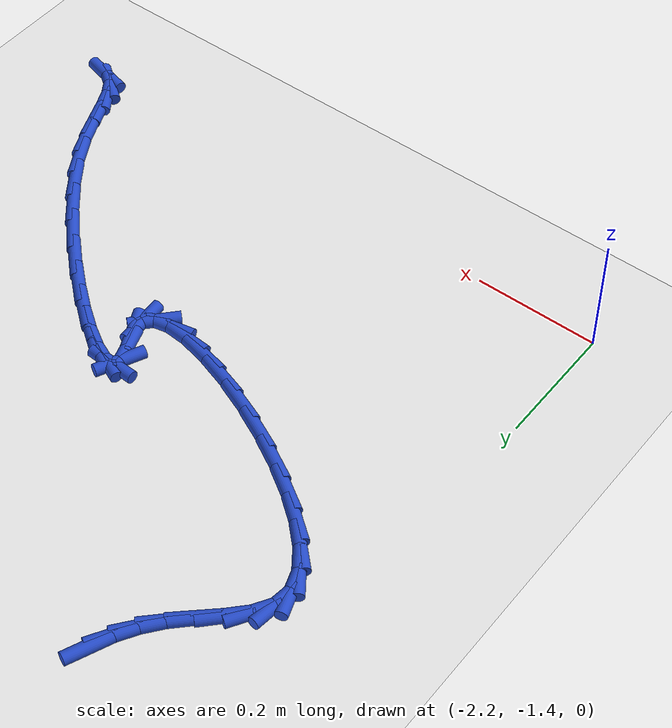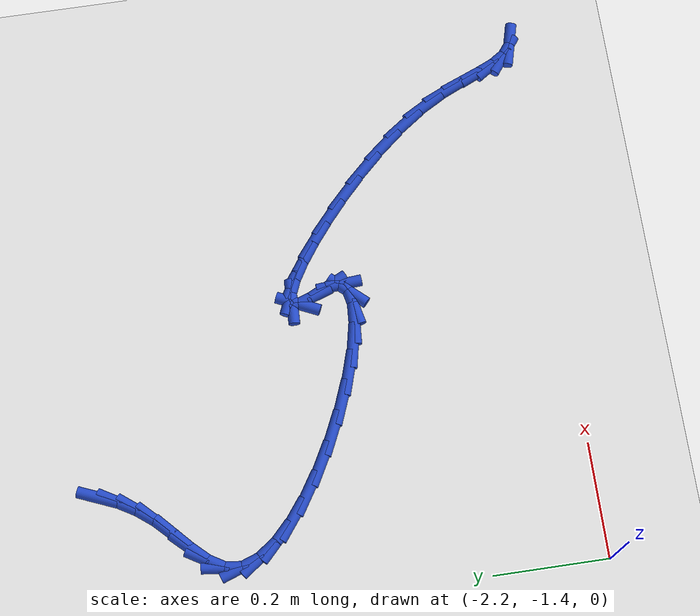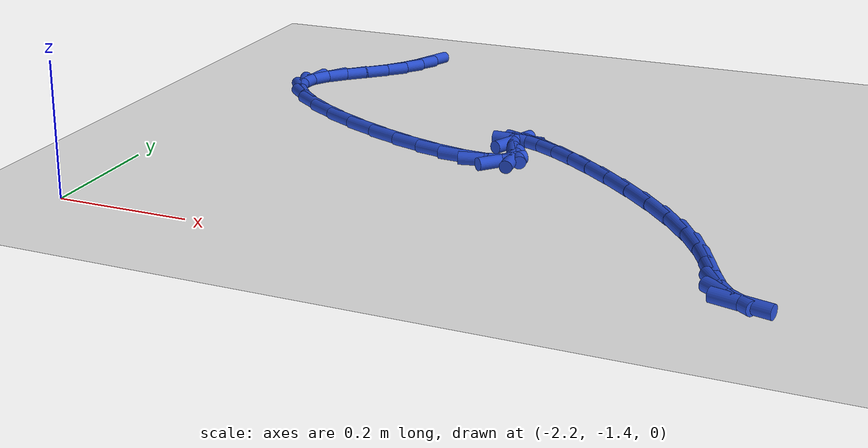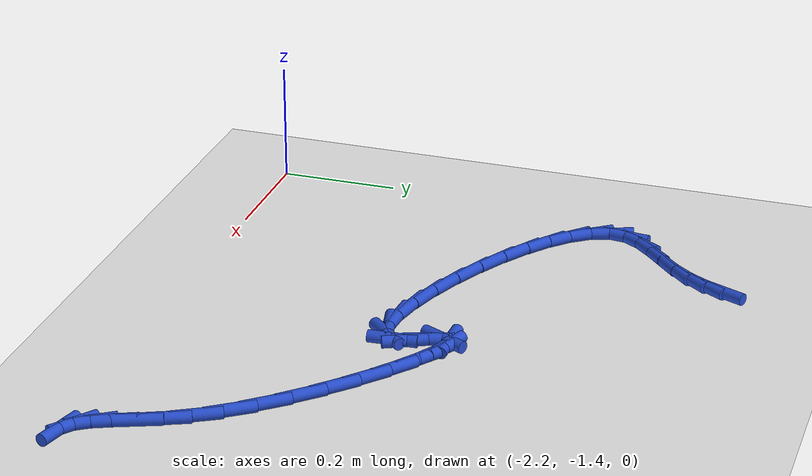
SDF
<sdf version="1.6">
 <world name="default">
  <model name="ground_plane">
   <static>1</static>
   <link name="link">
    <collision name="collision">
     <geometry><plane><normal>0 0 1</normal><size>100 100</size></plane></geometry>
     <surface><friction><ode><mu>100</mu><mu2>50</mu2></ode></friction></surface>
    </collision>
    <visual name="visual">
     <cast_shadows>0</cast_shadows>
     <geometry><plane><normal>0 0 1</normal><size>100 100</size></plane></geometry>
     <material>
      <script><uri>file://media/materials/scripts/gazebo.material</uri><name>Gazebo/WhiteGlow</name></script>
     </material>
    </visual>
   </link>
  </model>
  <model name="line">
   <link name="link_150">
    <pose>-1.9731847995964362 -0.5659096130140324 0.01 0 1.57 1.1713240663926172</pose>
    <collision name="collision">
     <geometry><cylinder><radius>0.01</radius><length>0.08</length></cylinder></geometry>
    </collision>
    <visual name="visual">
     <material>
      <script><name>Gazebo/Blue</name><uri>file://media/materials/scripts/gazebo.material</uri></script>
     </material>
     <geometry><cylinder><radius>0.01</radius><length>0.08</length></cylinder></geometry>
    </visual>
   </link>
   <link name="link_151">
    <pose>-1.986045454685041 -0.5963727345712457 0.01 0 1.57 1.0375126222861626</pose>
    <collision name="collision">
     <geometry><cylinder><radius>0.01</radius><length>0.08</length></cylinder></geometry>
    </collision>
    <visual name="visual">
     <material>
      <script><name>Gazebo/Blue</name><uri>file://media/materials/scripts/gazebo.material</uri></script>
     </material>
     <geometry><cylinder><radius>0.01</radius><length>0.08</length></cylinder></geometry>
    </visual>
   </link>
   <link name="link_152">
    <pose>-2.0033181121033143 -0.6256317361886606 0.01 0 1.57 0.9073966812657125</pose>
    <collision name="collision">
     <geometry><cylinder><radius>0.01</radius><length>0.08</length></cylinder></geometry>
    </collision>
    <visual name="visual">
     <material>
      <script><name>Gazebo/Blue</name><uri>file://media/materials/scripts/gazebo.material</uri></script>
     </material>
     <geometry><cylinder><radius>0.01</radius><length>0.08</length></cylinder></geometry>
    </visual>
   </link>
   <link name="link_153">
    <pose>-2.0251950450676124 -0.6536228624186747 0.01 0 1.57 0.7913356417255717</pose>
    <collision name="collision">
     <geometry><cylinder><radius>0.01</radius><length>0.08</length></cylinder></geometry>
    </collision>
    <visual name="visual">
     <material>
      <script><name>Gazebo/Blue</name><uri>file://media/materials/scripts/gazebo.material</uri></script>
     </material>
     <geometry><cylinder><radius>0.01</radius><length>0.08</length></cylinder></geometry>
    </visual>
   </link>
   <link name="link_154">
    <pose>-2.0515903526741086 -0.6803334890642785 0.01 0 1.57 0.7499831603994702</pose>
    <collision name="collision">
     <geometry><cylinder><radius>0.01</radius><length>0.08</length></cylinder></geometry>
    </collision>
    <visual name="visual">
     <material>
      <script><name>Gazebo/Blue</name><uri>file://media/materials/scripts/gazebo.material</uri></script>
     </material>
     <geometry><cylinder><radius>0.01</radius><length>0.08</length></cylinder></geometry>
    </visual>
   </link>
   <link name="link_155">
    <pose>-2.079458968948712 -0.7062949167574665 0.01 0 1.57 0.8162561795081931</pose>
    <collision name="collision">
     <geometry><cylinder><radius>0.01</radius><length>0.08</length></cylinder></geometry>
    </collision>
    <visual name="visual">
     <material>
      <script><name>Gazebo/Blue</name><uri>file://media/materials/scripts/gazebo.material</uri></script>
     </material>
     <geometry><cylinder><radius>0.01</radius><length>0.08</length></cylinder></geometry>
    </visual>
   </link>
   <link name="link_156">
    <pose>-2.1039694796244035 -0.7323667952309763 0.01 0 1.57 1.028520281008065</pose>
    <collision name="collision">
     <geometry><cylinder><radius>0.01</radius><length>0.08</length></cylinder></geometry>
    </collision>
    <visual name="visual">
     <material>
      <script><name>Gazebo/Blue</name><uri>file://media/materials/scripts/gazebo.material</uri></script>
     </material>
     <geometry><cylinder><radius>0.01</radius><length>0.08</length></cylinder></geometry>
    </visual>
   </link>
   <link name="link_157">
    <pose>-2.120265758451944 -0.7594133165328216 0.01 0 1.57 1.4537881845481213</pose>
    <collision name="collision">
     <geometry><cylinder><radius>0.01</radius><length>0.08</length></cylinder></geometry>
    </collision>
    <visual name="visual">
     <material>
      <script><name>Gazebo/Blue</name><uri>file://media/materials/scripts/gazebo.material</uri></script>
     </material>
     <geometry><cylinder><radius>0.01</radius><length>0.08</length></cylinder></geometry>
    </visual>
   </link>
   <link name="link_158">
    <pose>-2.123656380456296 -0.78825861085436 0.01 0 1.57 -1.2332238301859275</pose>
    <collision name="collision">
     <geometry><cylinder><radius>0.01</radius><length>0.08</length></cylinder></geometry>
    </collision>
    <visual name="visual">
     <material>
      <script><name>Gazebo/Blue</name><uri>file://media/materials/scripts/gazebo.material</uri></script>
     </material>
     <geometry><cylinder><radius>0.01</radius><length>0.08</length></cylinder></geometry>
    </visual>
   </link>
   <link name="link_159">
    <pose>-2.1129058570495736 -0.8188861881256307 0.01 0 1.57 -0.9447409829257769</pose>
    <collision name="collision">
     <geometry><cylinder><radius>0.01</radius><length>0.08</length></cylinder></geometry>
    </collision>
    <visual name="visual">
     <material>
      <script><name>Gazebo/Blue</name><uri>file://media/materials/scripts/gazebo.material</uri></script>
     </material>
     <geometry><cylinder><radius>0.01</radius><length>0.08</length></cylinder></geometry>
    </visual>
   </link>
   <link name="link_160">
    <pose>-2.090059577933475 -0.8504815190606206 0.01 0 1.57 -0.7691169860320454</pose>
    <collision name="collision">
     <geometry><cylinder><radius>0.01</radius><length>0.08</length></cylinder></geometry>
    </collision>
    <visual name="visual">
     <material>
      <script><name>Gazebo/Blue</name><uri>file://media/materials/scripts/gazebo.material</uri></script>
     </material>
     <geometry><cylinder><radius>0.01</radius><length>0.08</length></cylinder></geometry>
    </visual>
   </link>
   <link name="link_161">
    <pose>-2.0572925928042367 -0.88219853594023 0.01 0 1.57 -0.6530394254307885</pose>
    <collision name="collision">
     <geometry><cylinder><radius>0.01</radius><length>0.08</length></cylinder></geometry>
    </collision>
    <visual name="visual">
     <material>
      <script><name>Gazebo/Blue</name><uri>file://media/materials/scripts/gazebo.material</uri></script>
     </material>
     <geometry><cylinder><radius>0.01</radius><length>0.08</length></cylinder></geometry>
    </visual>
   </link>
   <link name="link_162">
    <pose>-2.0167799513580964 -0.9131911710453593 0.01 0 1.57 -0.5682179923980845</pose>
    <collision name="collision">
     <geometry><cylinder><radius>0.01</radius><length>0.08</length></cylinder></geometry>
    </collision>
    <visual name="visual">
     <material>
      <script><name>Gazebo/Blue</name><uri>file://media/materials/scripts/gazebo.material</uri></script>
     </material>
     <geometry><cylinder><radius>0.01</radius><length>0.08</length></cylinder></geometry>
    </visual>
   </link>
   <link name="link_163">
    <pose>-1.9706967032912925 -0.9426133566569104 0.01 0 1.57 -0.4996150527058687</pose>
    <collision name="collision">
     <geometry><cylinder><radius>0.01</radius><length>0.08</length></cylinder></geometry>
    </collision>
    <visual name="visual">
     <material>
      <script><name>Gazebo/Blue</name><uri>file://media/materials/scripts/gazebo.material</uri></script>
     </material>
     <geometry><cylinder><radius>0.01</radius><length>0.08</length></cylinder></geometry>
    </visual>
   </link>
   <link name="link_164">
    <pose>-1.921217898300062 -0.9696190250557828 0.01 0 1.57 -0.43797719488370757</pose>
    <collision name="collision">
     <geometry><cylinder><radius>0.01</radius><length>0.08</length></cylinder></geometry>
    </collision>
    <visual name="visual">
     <material>
      <script><name>Gazebo/Blue</name><uri>file://media/materials/scripts/gazebo.material</uri></script>
     </material>
     <geometry><cylinder><radius>0.01</radius><length>0.08</length></cylinder></geometry>
    </visual>
   </link>
   <link name="link_165">
    <pose>-1.8705185860806426 -0.9933621085228777 0.01 0 1.57 -0.3759320382991309</pose>
    <collision name="collision">
     <geometry><cylinder><radius>0.01</radius><length>0.08</length></cylinder></geometry>
    </collision>
    <visual name="visual">
     <material>
      <script><name>Gazebo/Blue</name><uri>file://media/materials/scripts/gazebo.material</uri></script>
     </material>
     <geometry><cylinder><radius>0.01</radius><length>0.08</length></cylinder></geometry>
    </visual>
   </link>
   <link name="link_166">
    <pose>-1.8207738163292717 -1.0129965393390956 0.01 0 1.57 -0.3050813837421018</pose>
    <collision name="collision">
     <geometry><cylinder><radius>0.01</radius><length>0.08</length></cylinder></geometry>
    </collision>
    <visual name="visual">
     <material>
      <script><name>Gazebo/Blue</name><uri>file://media/materials/scripts/gazebo.material</uri></script>
     </material>
     <geometry><cylinder><radius>0.01</radius><length>0.08</length></cylinder></geometry>
    </visual>
   </link>
   <link name="link_167">
    <pose>-1.7741586387421882 -1.0276762497853378 0.01 0 1.57 -0.21171038360485941</pose>
    <collision name="collision">
     <geometry><cylinder><radius>0.01</radius><length>0.08</length></cylinder></geometry>
    </collision>
    <visual name="visual">
     <material>
      <script><name>Gazebo/Blue</name><uri>file://media/materials/scripts/gazebo.material</uri></script>
     </material>
     <geometry><cylinder><radius>0.01</radius><length>0.08</length></cylinder></geometry>
    </visual>
   </link>
   <link name="link_168">
    <pose>-1.7328481030156286 -1.0365551721425044 0.01 0 1.57 -0.0658817806135082</pose>
    <collision name="collision">
     <geometry><cylinder><radius>0.01</radius><length>0.08</length></cylinder></geometry>
    </collision>
    <visual name="visual">
     <material>
      <script><name>Gazebo/Blue</name><uri>file://media/materials/scripts/gazebo.material</uri></script>
     </material>
     <geometry><cylinder><radius>0.01</radius><length>0.08</length></cylinder></geometry>
    </visual>
   </link>
   <link name="link_169">
    <pose>-1.6990172588458312 -1.0387872386914967 0.01 0 1.57 0.21426536281626923</pose>
    <collision name="collision">
     <geometry><cylinder><radius>0.01</radius><length>0.08</length></cylinder></geometry>
    </collision>
    <visual name="visual">
     <material>
      <script><name>Gazebo/Blue</name><uri>file://media/materials/scripts/gazebo.material</uri></script>
     </material>
     <geometry><cylinder><radius>0.01</radius><length>0.08</length></cylinder></geometry>
    </visual>
   </link>
   <link name="link_170">
    <pose>-1.6748411559290335 -1.033526381713215 0.01 0 1.57 0.8336736037768554</pose>
    <collision name="collision">
     <geometry><cylinder><radius>0.01</radius><length>0.08</length></cylinder></geometry>
    </collision>
    <visual name="visual">
     <material>
      <script><name>Gazebo/Blue</name><uri>file://media/materials/scripts/gazebo.material</uri></script>
     </material>
     <geometry><cylinder><radius>0.01</radius><length>0.08</length></cylinder></geometry>
    </visual>
   </link>
   <link name="link_171">
    <pose>-1.662494843961473 -1.01992653348856 0.01 0 1.57 -1.4981338088702567</pose>
    <collision name="collision">
     <geometry><cylinder><radius>0.01</radius><length>0.08</length></cylinder></geometry>
    </collision>
    <visual name="visual">
     <material>
      <script><name>Gazebo/Blue</name><uri>file://media/materials/scripts/gazebo.material</uri></script>
     </material>
     <geometry><cylinder><radius>0.01</radius><length>0.08</length></cylinder></geometry>
    </visual>
   </link>
   <link name="link_172">
    <pose>-1.6641533726393876 -0.9971416262984327 0.01 0 1.57 -1.1251012968462188</pose>
    <collision name="collision">
     <geometry><cylinder><radius>0.01</radius><length>0.08</length></cylinder></geometry>
    </collision>
    <visual name="visual">
     <material>
      <script><name>Gazebo/Blue</name><uri>file://media/materials/scripts/gazebo.material</uri></script>
     </material>
     <geometry><cylinder><radius>0.01</radius><length>0.08</length></cylinder></geometry>
    </visual>
   </link>
   <link name="link_173">
    <pose>-1.6786259441503437 -0.9668488516476647 0.01 0 1.57 -1.2538066842216762</pose>
    <collision name="collision">
     <geometry><cylinder><radius>0.01</radius><length>0.08</length></cylinder></geometry>
    </collision>
    <visual name="visual">
     <material>
      <script><name>Gazebo/Blue</name><uri>file://media/materials/scripts/gazebo.material</uri></script>
     </material>
     <geometry><cylinder><radius>0.01</radius><length>0.08</length></cylinder></geometry>
    </visual>
   </link>
   <link name="link_174">
    <pose>-1.6858836960266559 -0.9447250514679267 0.01 0 1.57 1.1347050564672816</pose>
    <collision name="collision">
     <geometry><cylinder><radius>0.01</radius><length>0.08</length></cylinder></geometry>
    </collision>
    <visual name="visual">
     <material>
      <script><name>Gazebo/Blue</name><uri>file://media/materials/scripts/gazebo.material</uri></script>
     </material>
     <geometry><cylinder><radius>0.01</radius><length>0.08</length></cylinder></geometry>
    </visual>
   </link>
   <link name="link_175">
    <pose>-1.6811401676076418 -0.9345461168816226 0.01 0 1.57 -0.03581332539280138</pose>
    <collision name="collision">
     <geometry><cylinder><radius>0.01</radius><length>0.08</length></cylinder></geometry>
    </collision>
    <visual name="visual">
     <material>
      <script><name>Gazebo/Blue</name><uri>file://media/materials/scripts/gazebo.material</uri></script>
     </material>
     <geometry><cylinder><radius>0.01</radius><length>0.08</length></cylinder></geometry>
    </visual>
   </link>
   <link name="link_176">
    <pose>-1.666131011320741 -0.9350838746075848 0.01 0 1.57 -0.4026672492315158</pose>
    <collision name="collision">
     <geometry><cylinder><radius>0.01</radius><length>0.08</length></cylinder></geometry>
    </collision>
    <visual name="visual">
     <material>
      <script><name>Gazebo/Blue</name><uri>file://media/materials/scripts/gazebo.material</uri></script>
     </material>
     <geometry><cylinder><radius>0.01</radius><length>0.08</length></cylinder></geometry>
    </visual>
   </link>
   <link name="link_177">
    <pose>-1.6425918795933914 -0.9451101513646463 0.01 0 1.57 -0.5425148552829772</pose>
    <collision name="collision">
     <geometry><cylinder><radius>0.01</radius><length>0.08</length></cylinder></geometry>
    </collision>
    <visual name="visual">
     <material>
      <script><name>Gazebo/Blue</name><uri>file://media/materials/scripts/gazebo.material</uri></script>
     </material>
     <geometry><cylinder><radius>0.01</radius><length>0.08</length></cylinder></geometry>
    </visual>
   </link>
   <link name="link_178">
    <pose>-1.6122584248530314 -0.9633967738716394 0.01 0 1.57 -0.6209732637894025</pose>
    <collision name="collision">
     <geometry><cylinder><radius>0.01</radius><length>0.08</length></cylinder></geometry>
    </collision>
    <visual name="visual">
     <material>
      <script><name>Gazebo/Blue</name><uri>file://media/materials/scripts/gazebo.material</uri></script>
     </material>
     <geometry><cylinder><radius>0.01</radius><length>0.08</length></cylinder></geometry>
    </visual>
   </link>
   <link name="link_179">
    <pose>-1.5768662995271001 -0.9887155688473968 0.01 0 1.57 -0.6771096121026011</pose>
    <collision name="collision">
     <geometry><cylinder><radius>0.01</radius><length>0.08</length></cylinder></geometry>
    </collision>
    <visual name="visual">
     <material>
      <script><name>Gazebo/Blue</name><uri>file://media/materials/scripts/gazebo.material</uri></script>
     </material>
     <geometry><cylinder><radius>0.01</radius><length>0.08</length></cylinder></geometry>
    </visual>
   </link>
   <link name="link_180">
    <pose>-1.538151156043036 -1.0198383630107515 0.01 0 1.57 -0.7248955077747988</pose>
    <collision name="collision">
     <geometry><cylinder><radius>0.01</radius><length>0.08</length></cylinder></geometry>
    </collision>
    <visual name="visual">
     <material>
      <script><name>Gazebo/Blue</name><uri>file://media/materials/scripts/gazebo.material</uri></script>
     </material>
     <geometry><cylinder><radius>0.01</radius><length>0.08</length></cylinder></geometry>
    </visual>
   </link>
   <link name="link_181">
    <pose>-1.497848646828277 -1.0555369830805355 0.01 0 1.57 -0.7714098978659875</pose>
    <collision name="collision">
     <geometry><cylinder><radius>0.01</radius><length>0.08</length></cylinder></geometry>
    </collision>
    <visual name="visual">
     <material>
      <script><name>Gazebo/Blue</name><uri>file://media/materials/scripts/gazebo.material</uri></script>
     </material>
     <geometry><cylinder><radius>0.01</radius><length>0.08</length></cylinder></geometry>
    </visual>
   </link>
   <link name="link_182">
    <pose>-1.457694424310263 -1.094583255775582 0.01 0 1.57 -0.8218323499674169</pose>
    <collision name="collision">
     <geometry><cylinder><radius>0.01</radius><length>0.08</length></cylinder></geometry>
    </collision>
    <visual name="visual">
     <material>
      <script><name>Gazebo/Blue</name><uri>file://media/materials/scripts/gazebo.material</uri></script>
     </material>
     <geometry><cylinder><radius>0.01</radius><length>0.08</length></cylinder></geometry>
    </visual>
   </link>
   <link name="link_183">
    <pose>-1.4194241409164317 -1.1357490078147232 0.01 0 1.57 -0.8816528298906848</pose>
    <collision name="collision">
     <geometry><cylinder><radius>0.01</radius><length>0.08</length></cylinder></geometry>
    </collision>
    <visual name="visual">
     <material>
      <script><name>Gazebo/Blue</name><uri>file://media/materials/scripts/gazebo.material</uri></script>
     </material>
     <geometry><cylinder><radius>0.01</radius><length>0.08</length></cylinder></geometry>
    </visual>
   </link>
   <link name="link_184">
    <pose>-1.3847734490742225 -1.1778060659167922 0.01 0 1.57 -0.9586029258831813</pose>
    <collision name="collision">
     <geometry><cylinder><radius>0.01</radius><length>0.08</length></cylinder></geometry>
    </collision>
    <visual name="visual">
     <material>
      <script><name>Gazebo/Blue</name><uri>file://media/materials/scripts/gazebo.material</uri></script>
     </material>
     <geometry><cylinder><radius>0.01</radius><length>0.08</length></cylinder></geometry>
    </visual>
   </link>
   <link name="link_185">
    <pose>-1.3554780012110728 -1.2195262568006209 0.01 0 1.57 -1.0609443407892696</pose>
    <collision name="collision">
     <geometry><cylinder><radius>0.01</radius><length>0.08</length></cylinder></geometry>
    </collision>
    <visual name="visual">
     <material>
      <script><name>Gazebo/Blue</name><uri>file://media/materials/scripts/gazebo.material</uri></script>
     </material>
     <geometry><cylinder><radius>0.01</radius><length>0.08</length></cylinder></geometry>
    </visual>
   </link>
   <link name="link_186">
    <pose>-1.333026289537472 -1.259678511487633 0.01 0 1.57 -1.1518926041259179</pose>
    <collision name="collision">
     <geometry><cylinder><radius>0.01</radius><length>0.08</length></cylinder></geometry>
    </collision>
    <visual name="visual">
     <material>
      <script><name>Gazebo/Blue</name><uri>file://media/materials/scripts/gazebo.material</uri></script>
     </material>
     <geometry><cylinder><radius>0.01</radius><length>0.08</length></cylinder></geometry>
    </visual>
   </link>
   <link name="link_187">
    <pose>-1.3164074836778887 -1.2970024792563049 0.01 0 1.57 -1.191317513336538</pose>
    <collision name="collision">
     <geometry><cylinder><radius>0.01</radius><length>0.08</length></cylinder></geometry>
    </collision>
    <visual name="visual">
     <material>
      <script><name>Gazebo/Blue</name><uri>file://media/materials/scripts/gazebo.material</uri></script>
     </material>
     <geometry><cylinder><radius>0.01</radius><length>0.08</length></cylinder></geometry>
    </visual>
   </link>
   <link name="link_188">
    <pose>-1.3031597307502034 -1.330220809391484 0.01 0 1.57 -1.15301463177416</pose>
    <collision name="collision">
     <geometry><cylinder><radius>0.01</radius><length>0.08</length></cylinder></geometry>
    </collision>
    <visual name="visual">
     <material>
      <script><name>Gazebo/Blue</name><uri>file://media/materials/scripts/gazebo.material</uri></script>
     </material>
     <geometry><cylinder><radius>0.01</radius><length>0.08</length></cylinder></geometry>
    </visual>
   </link>
   <link name="link_189">
    <pose>-1.2908033123876224 -1.358055941868288 0.01 0 1.57 -0.9884202664416029</pose>
    <collision name="collision">
     <geometry><cylinder><radius>0.01</radius><length>0.08</length></cylinder></geometry>
    </collision>
    <visual name="visual">
     <material>
      <script><name>Gazebo/Blue</name><uri>file://media/materials/scripts/gazebo.material</uri></script>
     </material>
     <geometry><cylinder><radius>0.01</radius><length>0.08</length></cylinder></geometry>
    </visual>
   </link>
   <link name="link_190">
    <pose>-1.2768585102233532 -1.3792303166618365 0.01 0 1.57 -0.6478739278486371</pose>
    <collision name="collision">
     <geometry><cylinder><radius>0.01</radius><length>0.08</length></cylinder></geometry>
    </collision>
    <visual name="visual">
     <material>
      <script><name>Gazebo/Blue</name><uri>file://media/materials/scripts/gazebo.material</uri></script>
     </material>
     <geometry><cylinder><radius>0.01</radius><length>0.08</length></cylinder></geometry>
    </visual>
   </link>
   <link name="link_191">
    <pose>-1.259137491832764 -1.3926425590176754 0.01 0 1.57 -0.25919313476976513</pose>
    <collision name="collision">
     <geometry><cylinder><radius>0.01</radius><length>0.08</length></cylinder></geometry>
    </collision>
    <visual name="visual">
     <material>
      <script><name>Gazebo/Blue</name><uri>file://media/materials/scripts/gazebo.material</uri></script>
     </material>
     <geometry><cylinder><radius>0.01</radius><length>0.08</length></cylinder></geometry>
    </visual>
   </link>
  </model>
 </world>
</sdf>
